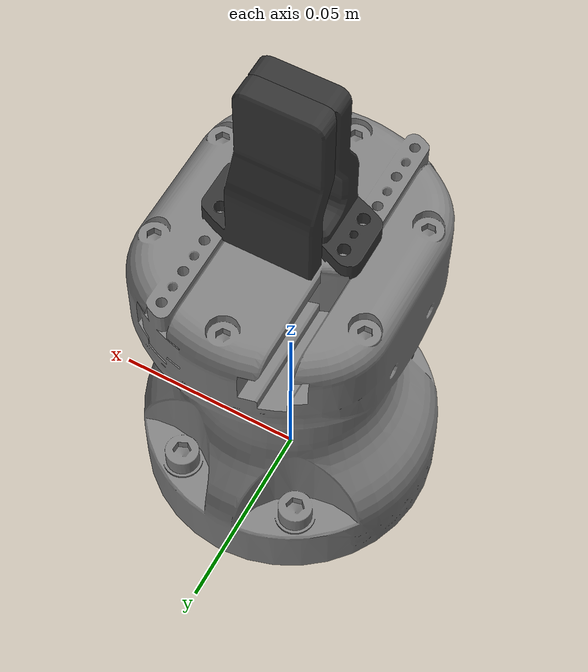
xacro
<?xml version="1.0"?>
<robot name="ur_gripper_std" xmlns:xacro="http://www.ros.org/wiki/xacro">

    <xacro:arg name="robot_id" default="robot" />
    <xacro:arg name="prefix" default="$(arg robot_id)_" />
    <xacro:arg name="base_frame" default="world" />

    <xacro:include filename="$(find hand_e_gripper_description)/urdf/hand_e_gripper.urdf.xacro" />

    <gazebo>
        <plugin name="gazebo_ros_control" filename="libgazebo_ros_control.so">
        <robotSimType>gazebo_ros_control/DefaultRobotHWSim</robotSimType>
        <legacyModeNS>false</legacyModeNS>
        </plugin>
    </gazebo>

    <link name="world"/>

    <!-- Robotiq hand_e -->
    <xacro:hand_e_gripper prefix="$(arg prefix)hand_e_gripper" parent="$(arg base_frame)">
        <origin xyz="0.0 0.0 0.0" rpy="0 0 0"/>
    </xacro:hand_e_gripper>

</robot>

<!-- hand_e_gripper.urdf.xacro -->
<robot name="hand_e_gripper" xmlns:xacro="http://wiki.ros.org/xacro">

    <xacro:property name="M_PI" value="3.1415926535897931" />

    <xacro:macro name="hand_e_gripper" params="prefix parent *origin ">

        <joint name="${prefix}_base_joint" type="fixed">
            <insert_block name="origin"/>
            <parent link="${parent}"/>
            <child link="${prefix}_base_link"/>
        </joint>

        <!-- BASE LINK -->
        <link name="${prefix}_base_link">
            <inertial>
                <mass value="0.25" />
                <origin xyz="0 0 0" />
                <inertia  ixx="1.0" ixy="0.0"  ixz="0.0"  iyy="1.0"  iyz="0.0"  izz="1.0" />
            </inertial>

            <visual>
                <origin xyz="0.0 0.0 0.0" rpy="0.0 0.0 0.0" />
                <geometry>
                    <mesh filename="package://hand_e_gripper_description/meshes/hand_e_base.stl" scale="1 1 1"/>
                </geometry>
                <material name="grey">
                <color rgba="0.5 0.5 0.5 1"/>
                </material>
            </visual>

            <collision>
                <origin xyz="0.0 0 0" rpy="0 0 0" />
                <geometry>
                    <mesh filename="package://hand_e_gripper_description/meshes/hand_e_base.stl" scale="1 1 1"/>
                </geometry>
            </collision>
        </link>

        <gazebo reference="${prefix}_base_link">
            <material>Gazebo/Grey</material>
            <turnGravityOff>false</turnGravityOff>
        </gazebo>

        <xacro:macro name="mimic_joint_plugin_gazebo" params="parent_joint mimic_joint has_pid:=false multiplier:=1.0 offset:=0 sensitiveness:=0.0 max_effort:=1.0 robot_namespace:=''">
            <gazebo>
                <plugin name="${mimic_joint}_mimic_joint_plugin" filename="libroboticsgroup_gazebo_mimic_joint_plugin.so">
                    <joint>${parent_joint}</joint>
                    <mimicJoint>${mimic_joint}</mimicJoint>
                    <xacro:if value="${has_pid}">
                    <hasPID />
                    </xacro:if>
                    <multiplier>${multiplier}</multiplier>
                    <offset>${offset}</offset>
                    <sensitiveness>${sensitiveness}</sensitiveness>
                    <maxEffort>${max_effort}</maxEffort>
                    <xacro:unless value="${robot_namespace == ''}">
                        <robotNamespace>($robot_namespace)</robotNamespace>
                    </xacro:unless>
                </plugin>
            </gazebo>
        </xacro:macro>

        <!-- FINGER LEFT -->

        <joint name="${prefix}_finger_left_joint" type="prismatic">
            <limit lower="0.0" upper="0.025" effort="1.0" velocity="0.0125"/>
            <axis xyz="0 1 0"/>
            <origin xyz="0 0.003 0.0995" rpy="0 0 0" />
            <parent link="${prefix}_base_link"/>
            <child link="${prefix}_left_finger" />
            <dynamics damping="0" friction="0"/>
        </joint>

        <transmission name="${prefix}_base_trans_left">
            <type>transmission_interface/SimpleTransmission</type>
            <actuator name="${prefix}_base_motor_left">
                <mechanicalReduction>1</mechanicalReduction>
                <motorTorqueConstant>1</motorTorqueConstant>
            </actuator>
            <joint name="${prefix}_finger_left_joint" >
                <hardwareInterface>hardware_interface/PositionJointInterface</hardwareInterface>
            </joint>
        </transmission>

        <link name="${prefix}_left_finger">
            <inertial>
                <mass value="0.1" />
                <origin xyz="0 0 0" />
            <inertia ixx="1.0" ixy="0.0" ixz="0.0"
                    iyy="1.0" iyz="0.0"
                    izz="1.0" />
            </inertial>

            <visual>
                <origin xyz="0.0 0 0" rpy="0 0 0" />
                <geometry>
                    <mesh filename="package://hand_e_gripper_description/meshes/hand_e_left_finger.stl" scale="1.0 1.0 1.0"/>
                </geometry>
                <material name="black">
                <color rgba="0.2 0.2 0.2 1"/>
                </material>
            </visual>

            <collision>
                <origin xyz="0 0 0" rpy="0 0 0" />
                <geometry>
                    <mesh filename="package://hand_e_gripper_description/meshes/hand_e_left_finger.stl" scale="1.0 1.0 1.0"/>
                </geometry>
            </collision>
            <contact_coefficients kd="1.0" kp="1000.0" mu="0"/>
        </link>

        <gazebo reference="${prefix}_left_finger">
            <material>Gazebo/Blue</material>
            <turnGravityOff>false</turnGravityOff>
        </gazebo>

        <!-- FINGER RIGHT -->

        <joint name="${prefix}_finger_right_joint" type="prismatic">
            <limit lower="0.0" upper="0.025" effort="1.0" velocity="0.0125"/>
            <axis xyz="0 -1 0"/>
            <origin xyz="0 -0.003 0.0995" rpy="0 0 0" />
            <parent link="${prefix}_base_link"/>
            <child link="${prefix}_right_finger" />
            <dynamics friction="100" damping="100" />
            <mimic joint="${prefix}_finger_left_joint" multiplier="1" offset="0"/>
        </joint>

        <xacro:mimic_joint_plugin_gazebo parent_joint="${prefix}_finger_left_joint"
                                         mimic_joint="${prefix}_finger_right_joint" has_pid="false" multiplier="1.0" max_effort="10.0" />

        <link name="${prefix}_right_finger">
            <inertial>
                <mass value="0.1" />
                <origin xyz="0 0 0" />
            <inertia ixx="1.0" ixy="0.0" ixz="0.0"
                    iyy="1.0" iyz="0.0"
                    izz="1.0" />
            </inertial>

            <visual>
                <origin xyz="0.0 0 0" rpy="0 0 ${pi}" />
                <geometry>
                    <mesh filename="package://hand_e_gripper_description/meshes/hand_e_left_finger.stl" scale="1.0 1.0 1.0"/>
                </geometry>
                <material name="black">
                <color rgba="0.2 0.2 0.2 1"/>
                </material>
            </visual>

            <collision>
                <origin xyz="0 0 0" rpy="0 0 ${pi}" />
                <geometry>
                    <mesh filename="package://hand_e_gripper_description/meshes/hand_e_left_finger.stl" scale="1.0 1.0 1.0"/>
                </geometry>
            </collision>
            <contact_coefficients kd="1.0" kp="1000.0" mu="0"/>
        </link>

        <gazebo reference="${prefix}_right_finger">
            <material>Gazebo/Blue</material>
            <turnGravityOff>false</turnGravityOff>
        </gazebo>

    </xacro:macro>

</robot>
